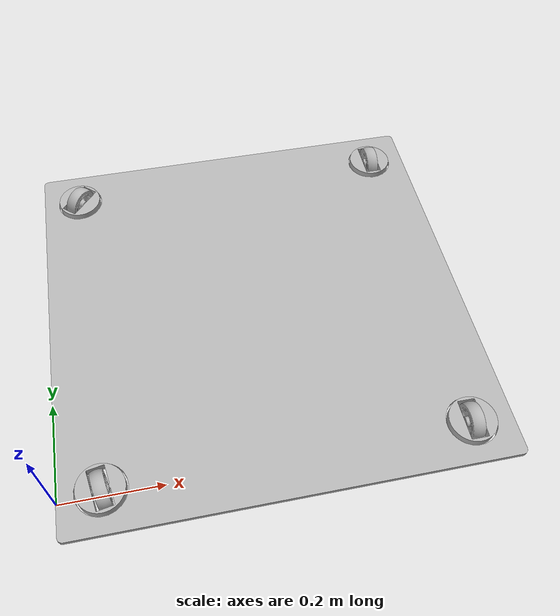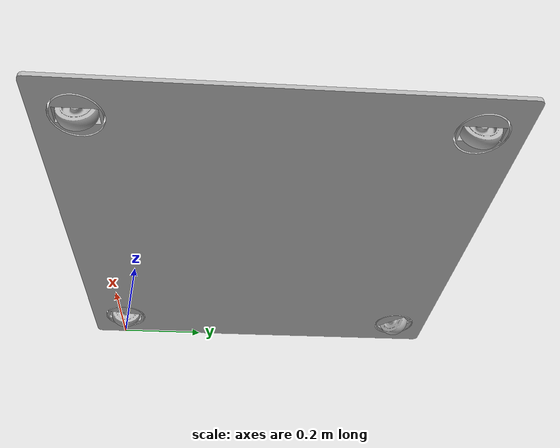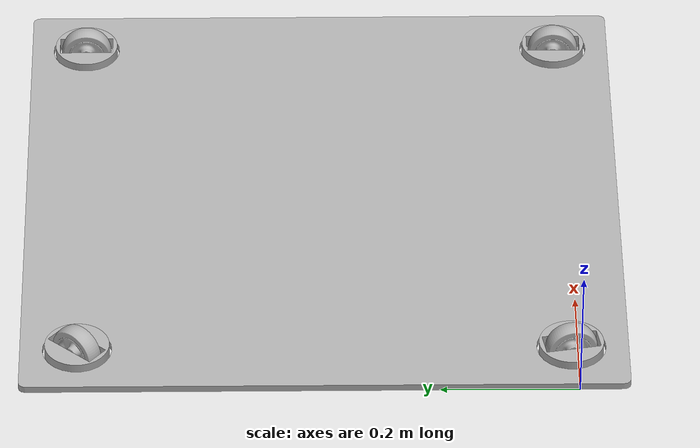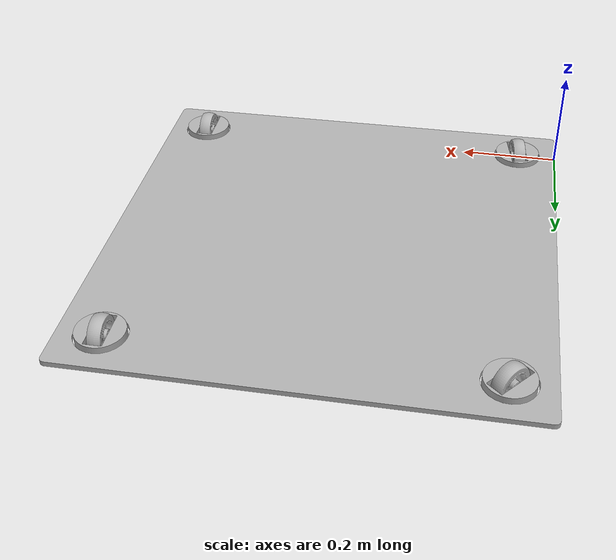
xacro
<?xml version="1.0" ?>
<robot name="stea" xmlns:xacro="http://www.ros.org/wiki/xacro">

<xacro:include filename="$(find stea_description)/urdf/materials.xacro" />
<xacro:include filename="$(find stea_description)/urdf/stea.trans" />
<xacro:include filename="$(find stea_description)/urdf/stea.gazebo" />
<link name="base_link">
  <inertial>
    <origin xyz="0.43700000000022443 0.3644999999999999 0.005" rpy="0 0 0"/>
    <mass value="7.323742327294597"/>
    <inertia ixx="0.446477" iyy="0.446477" izz="0.892833" ixy="-0.0" iyz="0.0" ixz="0.0"/>
  </inertial>
  <visual>
    <origin xyz="0 0 0" rpy="0 0 0"/>
    <geometry>
      <mesh filename="file://$(find stea_description)/meshes/base_link.stl" scale="0.001 0.001 0.001"/>
    </geometry>
    <material name="silver"/>
  </visual>
  <collision>
    <origin xyz="0 0 0" rpy="0 0 0"/>
    <geometry>
      <mesh filename="file://$(find stea_description)/meshes/base_link.stl" scale="0.001 0.001 0.001"/>
    </geometry>
  </collision>
</link>

<link name="Part2_1">
  <inertial>
    <origin xyz="-0.4369999999999999 -0.34450000000000003 0.0099999999999913" rpy="0 0 0"/>
    <mass value="0.08260706787638175"/>
    <inertia ixx="4.7e-05" iyy="7e-05" izz="0.000112" ixy="-4e-06" iyz="0.0" ixz="0.0"/>
  </inertial>
  <visual>
    <origin xyz="-0.5195 -0.3545 -0.0" rpy="0 0 0"/>
    <geometry>
      <mesh filename="file://$(find stea_description)/meshes/Part2_1.stl" scale="0.001 0.001 0.001"/>
    </geometry>
    <material name="silver"/>
  </visual>
  <collision>
    <origin xyz="-0.5195 -0.3545 -0.0" rpy="0 0 0"/>
    <geometry>
      <mesh filename="file://$(find stea_description)/meshes/Part2_1.stl" scale="0.001 0.001 0.001"/>
    </geometry>
  </collision>
</link>

<link name="Part4_1">
  <inertial>
    <origin xyz="-0.43699999999999917 1.073499999999999 0.0099999999999913" rpy="0 0 0"/>
    <mass value="0.08260706787638175"/>
    <inertia ixx="5.7e-05" iyy="6e-05" izz="0.000112" ixy="1.2e-05" iyz="-0.0" ixz="0.0"/>
  </inertial>
  <visual>
    <origin xyz="-0.5195 0.3545 -0.0" rpy="0 0 0"/>
    <geometry>
      <mesh filename="file://$(find stea_description)/meshes/Part4_1.stl" scale="0.001 0.001 0.001"/>
    </geometry>
    <material name="silver"/>
  </visual>
  <collision>
    <origin xyz="-0.5195 0.3545 -0.0" rpy="0 0 0"/>
    <geometry>
      <mesh filename="file://$(find stea_description)/meshes/Part4_1.stl" scale="0.001 0.001 0.001"/>
    </geometry>
  </collision>
</link>

<link name="Part5_1">
  <inertial>
    <origin xyz="-0.43699999999999983 -0.3445 0.0099999999999913" rpy="0 0 0"/>
    <mass value="0.08260706787638175"/>
    <inertia ixx="4.6e-05" iyy="7.1e-05" izz="0.000112" ixy="0.0" iyz="-0.0" ixz="0.0"/>
  </inertial>
  <visual>
    <origin xyz="-1.2285 -0.3545 -0.0" rpy="0 0 0"/>
    <geometry>
      <mesh filename="file://$(find stea_description)/meshes/Part5_1.stl" scale="0.001 0.001 0.001"/>
    </geometry>
    <material name="silver"/>
  </visual>
  <collision>
    <origin xyz="-1.2285 -0.3545 -0.0" rpy="0 0 0"/>
    <geometry>
      <mesh filename="file://$(find stea_description)/meshes/Part5_1.stl" scale="0.001 0.001 0.001"/>
    </geometry>
  </collision>
</link>

<link name="Part3_1">
  <inertial>
    <origin xyz="-0.43699999999999983 1.0735000000000001 0.0099999999999913" rpy="0 0 0"/>
    <mass value="0.08260706787638175"/>
    <inertia ixx="4.6e-05" iyy="7.1e-05" izz="0.000112" ixy="0.0" iyz="0.0" ixz="0.0"/>
  </inertial>
  <visual>
    <origin xyz="-1.2285 0.3545 -0.0" rpy="0 0 0"/>
    <geometry>
      <mesh filename="file://$(find stea_description)/meshes/Part3_1.stl" scale="0.001 0.001 0.001"/>
    </geometry>
    <material name="silver"/>
  </visual>
  <collision>
    <origin xyz="-1.2285 0.3545 -0.0" rpy="0 0 0"/>
    <geometry>
      <mesh filename="file://$(find stea_description)/meshes/Part3_1.stl" scale="0.001 0.001 0.001"/>
    </geometry>
  </collision>
</link>

<link name="wheel_1">
  <inertial>
    <origin xyz="1.316280709068307e-06 -7.490295972384375e-06 -6.049883922550764e-06" rpy="0 0 0"/>
    <mass value="0.07051856513617272"/>
    <inertia ixx="5.6e-05" iyy="3.2e-05" izz="3.2e-05" ixy="4e-06" iyz="0.0" ixz="-0.0"/>
  </inertial>
  <visual>
    <origin xyz="-0.0825 -0.01 -0.01" rpy="0 0 0"/>
    <geometry>
      <mesh filename="file://$(find stea_description)/meshes/wheel_1.stl" scale="0.001 0.001 0.001"/>
    </geometry>
    <material name="silver"/>
  </visual>
  <collision>
    <origin xyz="-0.0825 -0.01 -0.01" rpy="0 0 0"/>
    <geometry>
      <mesh filename="file://$(find stea_description)/meshes/wheel_1.stl" scale="0.001 0.001 0.001"/>
    </geometry>
  </collision>
</link>

<link name="wheel3_1">
  <inertial>
    <origin xyz="6.35530171250176e-06 7.351759263030111e-06 2.611573630961761e-11" rpy="0 0 0"/>
    <mass value="0.07051856513617272"/>
    <inertia ixx="4.6e-05" iyy="4.2e-05" izz="3.2e-05" ixy="-1.2e-05" iyz="0.0" ixz="0.0"/>
  </inertial>
  <visual>
    <origin xyz="-0.0825 -0.719 -0.01" rpy="0 0 0"/>
    <geometry>
      <mesh filename="file://$(find stea_description)/meshes/wheel3_1.stl" scale="0.001 0.001 0.001"/>
    </geometry>
    <material name="silver"/>
  </visual>
  <collision>
    <origin xyz="-0.0825 -0.719 -0.01" rpy="0 0 0"/>
    <geometry>
      <mesh filename="file://$(find stea_description)/meshes/wheel3_1.stl" scale="0.001 0.001 0.001"/>
    </geometry>
  </collision>
</link>

<link name="wheel2_1">
  <inertial>
    <origin xyz="-1.4845569218380206e-11 9.717933119990363e-06 2.611573630961761e-11" rpy="0 0 0"/>
    <mass value="0.07051856513617272"/>
    <inertia ixx="5.7e-05" iyy="3.2e-05" izz="3.2e-05" ixy="-0.0" iyz="0.0" ixz="0.0"/>
  </inertial>
  <visual>
    <origin xyz="-0.7915 -0.719 -0.01" rpy="0 0 0"/>
    <geometry>
      <mesh filename="file://$(find stea_description)/meshes/wheel2_1.stl" scale="0.001 0.001 0.001"/>
    </geometry>
    <material name="silver"/>
  </visual>
  <collision>
    <origin xyz="-0.7915 -0.719 -0.01" rpy="0 0 0"/>
    <geometry>
      <mesh filename="file://$(find stea_description)/meshes/wheel2_1.stl" scale="0.001 0.001 0.001"/>
    </geometry>
  </collision>
</link>

<link name="wheel4_1">
  <inertial>
    <origin xyz="-1.4845569218380206e-11 9.717933119938321e-06 2.611573630961761e-11" rpy="0 0 0"/>
    <mass value="0.07051856513617272"/>
    <inertia ixx="5.7e-05" iyy="3.2e-05" izz="3.2e-05" ixy="-0.0" iyz="0.0" ixz="0.0"/>
  </inertial>
  <visual>
    <origin xyz="-0.7915 -0.01 -0.01" rpy="0 0 0"/>
    <geometry>
      <mesh filename="file://$(find stea_description)/meshes/wheel4_1.stl" scale="0.001 0.001 0.001"/>
    </geometry>
    <material name="silver"/>
  </visual>
  <collision>
    <origin xyz="-0.7915 -0.01 -0.01" rpy="0 0 0"/>
    <geometry>
      <mesh filename="file://$(find stea_description)/meshes/wheel4_1.stl" scale="0.001 0.001 0.001"/>
    </geometry>
  </collision>
</link>

<joint name="Rev1" type="continuous">
  <origin xyz="0.5195 0.3545 0.0" rpy="0 0 0"/>
  <parent link="base_link"/>
  <child link="Part2_1"/>
  <axis xyz="-0.0 -0.0 -1.0"/>
</joint>

<joint name="Rev2" type="continuous">
  <origin xyz="0.5195 -0.3545 0.0" rpy="0 0 0"/>
  <parent link="base_link"/>
  <child link="Part4_1"/>
  <axis xyz="-0.0 -0.0 -1.0"/>
</joint>

<joint name="Rev3" type="continuous">
  <origin xyz="1.2285 0.3545 0.0" rpy="0 0 0"/>
  <parent link="base_link"/>
  <child link="Part5_1"/>
  <axis xyz="-0.0 -0.0 -1.0"/>
</joint>

<joint name="Rev4" type="continuous">
  <origin xyz="1.2285 -0.3545 0.0" rpy="0 0 0"/>
  <parent link="base_link"/>
  <child link="Part3_1"/>
  <axis xyz="-0.0 -0.0 -1.0"/>
</joint>

<joint name="Rev5" type="continuous">
  <origin xyz="-0.437 -0.3445 0.01" rpy="0 0 0"/>
  <parent link="Part2_1"/>
  <child link="wheel_1"/>
  <axis xyz="0.984908 0.173081 -0.0"/>
</joint>

<joint name="Rev6" type="continuous">
  <origin xyz="-0.437 1.0735 0.01" rpy="0 0 0"/>
  <parent link="Part4_1"/>
  <child link="wheel3_1"/>
  <axis xyz="0.756514 -0.653978 0.0"/>
</joint>

<joint name="Rev7" type="continuous">
  <origin xyz="-0.437 1.0735 0.01" rpy="0 0 0"/>
  <parent link="Part3_1"/>
  <child link="wheel2_1"/>
  <axis xyz="1.0 -0.0 -0.0"/>
</joint>

<joint name="Rev8" type="continuous">
  <origin xyz="-0.437 -0.3445 0.01" rpy="0 0 0"/>
  <parent link="Part5_1"/>
  <child link="wheel4_1"/>
  <axis xyz="1.0 -0.0 0.0"/>
</joint>

</robot>

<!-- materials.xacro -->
<robot name="stea" xmlns:xacro="http://www.ros.org/wiki/xacro" >

<material name="silver">
  <color rgba="0.700 0.700 0.700 1.000"/>
</material>

</robot>

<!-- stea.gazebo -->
<robot name="stea" xmlns:xacro="http://www.ros.org/wiki/xacro" >

<xacro:property name="body_color" value="Gazebo/Silver" />

<gazebo>
  <plugin name="control" filename="libgazebo_ros_control.so"/>
</gazebo>
<gazebo reference="base_link">
  <material>${body_color}</material>
  <mu1>0.2</mu1>
  <mu2>0.2</mu2>
  <self_collide>true</self_collide>
  <gravity>true</gravity>
</gazebo>

<gazebo reference="Part2_1">
  <material>${body_color}</material>
  <mu1>0.2</mu1>
  <mu2>0.2</mu2>
  <self_collide>true</self_collide>
</gazebo>

<gazebo reference="Part4_1">
  <material>${body_color}</material>
  <mu1>0.2</mu1>
  <mu2>0.2</mu2>
  <self_collide>true</self_collide>
</gazebo>

<gazebo reference="Part5_1">
  <material>${body_color}</material>
  <mu1>0.2</mu1>
  <mu2>0.2</mu2>
  <self_collide>true</self_collide>
</gazebo>

<gazebo reference="Part3_1">
  <material>${body_color}</material>
  <mu1>0.2</mu1>
  <mu2>0.2</mu2>
  <self_collide>true</self_collide>
</gazebo>

<gazebo reference="wheel_1">
  <material>${body_color}</material>
  <mu1>0.2</mu1>
  <mu2>0.2</mu2>
  <self_collide>true</self_collide>
</gazebo>

<gazebo reference="wheel3_1">
  <material>${body_color}</material>
  <mu1>0.2</mu1>
  <mu2>0.2</mu2>
  <self_collide>true</self_collide>
</gazebo>

<gazebo reference="wheel2_1">
  <material>${body_color}</material>
  <mu1>0.2</mu1>
  <mu2>0.2</mu2>
  <self_collide>true</self_collide>
</gazebo>

<gazebo reference="wheel4_1">
  <material>${body_color}</material>
  <mu1>0.2</mu1>
  <mu2>0.2</mu2>
  <self_collide>true</self_collide>
</gazebo>

</robot>
